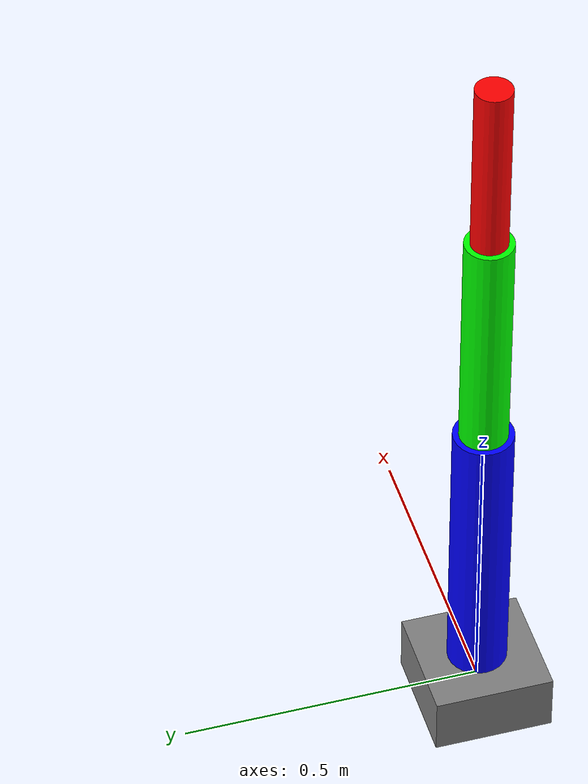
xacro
<?xml version="1.0"?>
<robot xmlns:xacro="http://ros.org/wiki/xacro" name="manipulator_3dof">

  <!-- Base link -->
  <link name="base_link">
    <visual>
      <origin xyz="0 0 0" rpy="0 0 0"/>
      <geometry>
        <box size="0.2 0.2 0.1"/>
      </geometry>
      <material name="gray">
        <color rgba="0.5 0.5 0.5 1.0"/>
      </material>
    </visual>
  </link>

  <!-- Link 1 -->
  <link name="link_1">
    <visual>
      <!-- shift by half of 0.5 length = 0.25 -->
      <origin xyz="0 0 0.25" rpy="0 0 0"/>
      <geometry>
        <cylinder length="0.5" radius="0.05"/>
      </geometry>
      <material name="blue">
        <color rgba="0 0 1 1"/>
      </material>
    </visual>
  </link>

  <joint name="joint_1" type="revolute">
    <parent link="base_link"/>
    <child link="link_1"/>
    <origin xyz="0 0 0.05" rpy="0 0 0"/>
    <axis xyz="0 0 1"/>
    <limit lower="-1.57" upper="1.57" effort="10" velocity="1.0"/>
  </joint>

  <!-- Link 2 -->
  <link name="link_2">
    <visual>
      <!-- shift by half of 0.4 length = 0.2 -->
      <origin xyz="0 0 0.2" rpy="0 0 0"/>
      <geometry>
        <cylinder length="0.4" radius="0.04"/>
      </geometry>
      <material name="green">
        <color rgba="0 1 0 1"/>
      </material>
    </visual>
  </link>

  <joint name="joint_2" type="revolute">
    <parent link="link_1"/>
    <child link="link_2"/>
    <origin xyz="0 0 0.5" rpy="0 0 0"/> <!-- top of link_1 -->
    <axis xyz="0 1 0"/>
    <limit lower="-1.57" upper="1.57" effort="10" velocity="1.0"/>
  </joint>

  <!-- Link 3 -->
  <link name="link_3">
    <visual>
      <!-- shift by half of 0.3 length = 0.15 -->
      <origin xyz="0 0 0.15" rpy="0 0 0"/>
      <geometry>
        <cylinder length="0.3" radius="0.03"/>
      </geometry>
      <material name="red">
        <color rgba="1 0 0 1"/>
      </material>
    </visual>
  </link>

  <joint name="joint_3" type="revolute">
    <parent link="link_2"/>
    <child link="link_3"/>
    <origin xyz="0 0 0.4" rpy="0 0 0"/> <!-- top of link_2 -->
    <axis xyz="0 1 0"/>
    <limit lower="-1.57" upper="1.57" effort="10" velocity="1.0"/>
  </joint>

</robot>
